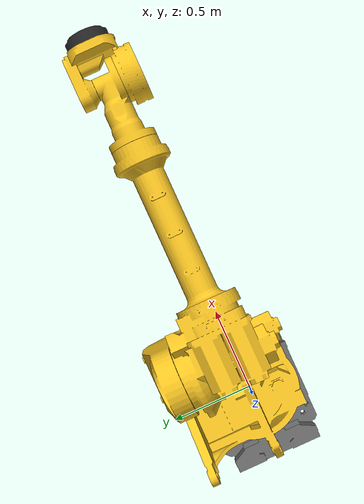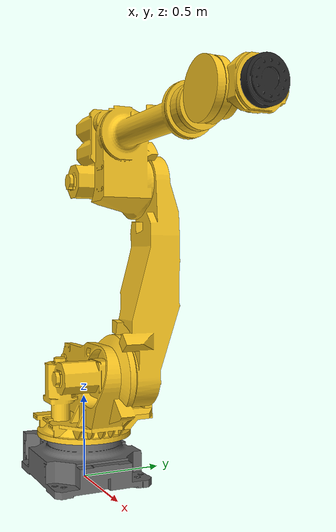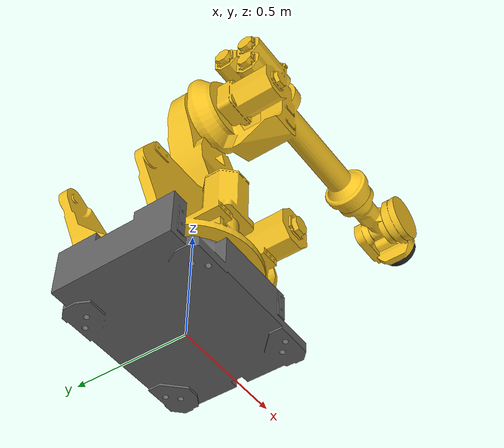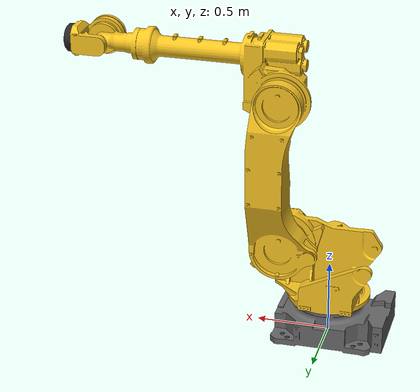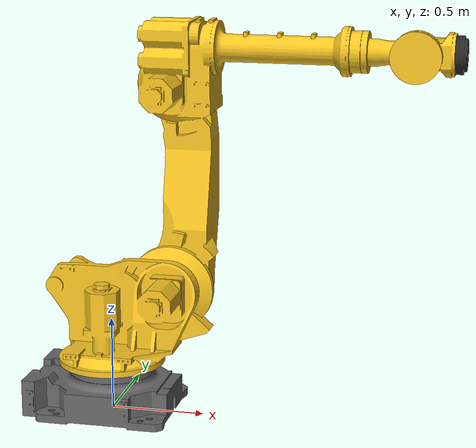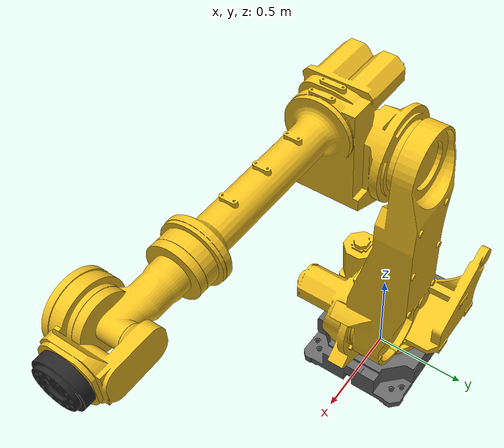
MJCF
<?xml version="1.0" ?>
<!-- MuJoCo model for FANUC R2000IB210F -->
<!-- Auto-generated from fanuc-industrial/fanuc_r2000ib_support -->
<mujoco model="r2000ib210f">
  <compiler angle="radian" autolimits="true"/>

  <default>
    <default class="r2000ib210f">
      <joint damping="100" frictionloss="10" armature="1"/>
      <position kp="1000" kv="100"/>
      <default class="visual">
        <geom type="mesh" contype="0" conaffinity="0" group="2"/>
      </default>
      <default class="collision">
        <geom type="mesh" group="3"/>
      </default>
    </default>
  </default>

  <asset>
    <mesh name="base_link_visual" file="../../fanuc-industrial/fanuc_r2000ib_support/meshes/r2000ib210f/visual/base_link.stl"/>
    <mesh name="base_link_collision" file="../../fanuc-industrial/fanuc_r2000ib_support/meshes/r2000ib210f/collision/base_link.stl"/>
    <mesh name="link_1_visual" file="../../fanuc-industrial/fanuc_r2000ib_support/meshes/r2000ib210f/visual/link_1.stl"/>
    <mesh name="link_1_collision" file="../../fanuc-industrial/fanuc_r2000ib_support/meshes/r2000ib210f/collision/link_1.stl"/>
    <mesh name="link_2_visual" file="../../fanuc-industrial/fanuc_r2000ib_support/meshes/r2000ib210f/visual/link_2.stl"/>
    <mesh name="link_2_collision" file="../../fanuc-industrial/fanuc_r2000ib_support/meshes/r2000ib210f/collision/link_2.stl"/>
    <mesh name="link_3_visual" file="../../fanuc-industrial/fanuc_r2000ib_support/meshes/r2000ib210f/visual/link_3.stl"/>
    <mesh name="link_3_collision" file="../../fanuc-industrial/fanuc_r2000ib_support/meshes/r2000ib210f/collision/link_3.stl"/>
    <mesh name="link_4_visual" file="../../fanuc-industrial/fanuc_r2000ib_support/meshes/r2000ib210f/visual/link_4.stl"/>
    <mesh name="link_4_collision" file="../../fanuc-industrial/fanuc_r2000ib_support/meshes/r2000ib210f/collision/link_4.stl"/>
    <mesh name="link_5_visual" file="../../fanuc-industrial/fanuc_r2000ib_support/meshes/r2000ib210f/visual/link_5.stl"/>
    <mesh name="link_5_collision" file="../../fanuc-industrial/fanuc_r2000ib_support/meshes/r2000ib210f/collision/link_5.stl"/>
    <mesh name="link_6_visual" file="../../fanuc-industrial/fanuc_r2000ib_support/meshes/r2000ib210f/visual/link_6.stl"/>
    <mesh name="link_6_collision" file="../../fanuc-industrial/fanuc_r2000ib_support/meshes/r2000ib210f/collision/link_6.stl"/>
  </asset>

  <worldbody>
    <body name="base_link" childclass="r2000ib210f">
      <inertial pos="0 0 0" mass="1.0" diaginertia="0.01 0.01 0.01"/>
      <geom class="visual" mesh="base_link_visual" rgba="0.400 0.400 0.400 1.000"/>
      <geom class="collision" mesh="base_link_collision"/>
      <body name="link_1" pos="0 0 0.670" childclass="r2000ib210f">
        <joint name="joint_1" type="hinge" axis="0 0 1" range="-3.1416 3.1416"/>
        <inertial pos="0 0 0" mass="1.0" diaginertia="0.01 0.01 0.01"/>
        <geom class="visual" mesh="link_1_visual" rgba="0.960 0.760 0.130 1.000"/>
        <geom class="collision" mesh="link_1_collision"/>
        <body name="link_2" pos="0.312 0 0" childclass="r2000ib210f">
          <joint name="joint_2" type="hinge" axis="0 1 0" range="-1.0472 1.3265"/>
          <inertial pos="0 0 0" mass="1.0" diaginertia="0.01 0.01 0.01"/>
          <geom class="visual" mesh="link_2_visual" rgba="0.960 0.760 0.130 1.000"/>
          <geom class="collision" mesh="link_2_collision"/>
          <body name="link_3" pos="0 0 1.075" childclass="r2000ib210f">
            <joint name="joint_3" type="hinge" axis="0 -1 0" range="-2.3038 4.0143"/>
            <inertial pos="0 0 0" mass="1.0" diaginertia="0.01 0.01 0.01"/>
            <geom class="visual" mesh="link_3_visual" rgba="0.960 0.760 0.130 1.000"/>
            <geom class="collision" mesh="link_3_collision"/>
            <body name="link_4" pos="0 0 0.225" childclass="r2000ib210f">
              <joint name="joint_4" type="hinge" axis="-1 0 0" range="-6.2832 6.2832"/>
              <inertial pos="0 0 0" mass="1.0" diaginertia="0.01 0.01 0.01"/>
              <geom class="visual" mesh="link_4_visual" rgba="0.960 0.760 0.130 1.000"/>
              <geom class="collision" mesh="link_4_collision"/>
              <body name="link_5" pos="1.280 0 0" childclass="r2000ib210f">
                <joint name="joint_5" type="hinge" axis="0 -1 0" range="-2.1817 2.1817"/>
                <inertial pos="0 0 0" mass="1.0" diaginertia="0.01 0.01 0.01"/>
                <geom class="visual" mesh="link_5_visual" rgba="0.960 0.760 0.130 1.000"/>
                <geom class="collision" mesh="link_5_collision"/>
                <body name="link_6" pos="0.235 0 0" childclass="r2000ib210f">
                  <joint name="joint_6" type="hinge" axis="-1 0 0" range="-6.2832 6.2832"/>
                  <inertial pos="0 0 0" mass="1.0" diaginertia="0.01 0.01 0.01"/>
                  <geom class="visual" mesh="link_6_visual" rgba="0.150 0.150 0.150 1.000"/>
                  <geom class="collision" mesh="link_6_collision"/>
                </body>
              </body>
            </body>
          </body>
        </body>
      </body>
    </body>
  </worldbody>

  <contact>
    <!-- Exclude collisions between adjacent links (parent-child pairs) -->
    <exclude body1="base_link" body2="link_1"/>
    <exclude body1="link_1" body2="link_2"/>
    <exclude body1="link_2" body2="link_3"/>
    <exclude body1="link_3" body2="link_4"/>
    <exclude body1="link_4" body2="link_5"/>
    <exclude body1="link_5" body2="link_6"/>
  </contact>

  <actuator>
    <position name="joint_1_actuator" joint="joint_1" class="r2000ib210f"/>
    <position name="joint_2_actuator" joint="joint_2" class="r2000ib210f"/>
    <position name="joint_3_actuator" joint="joint_3" class="r2000ib210f"/>
    <position name="joint_4_actuator" joint="joint_4" class="r2000ib210f"/>
    <position name="joint_5_actuator" joint="joint_5" class="r2000ib210f"/>
    <position name="joint_6_actuator" joint="joint_6" class="r2000ib210f"/>
  </actuator>
</mujoco>
